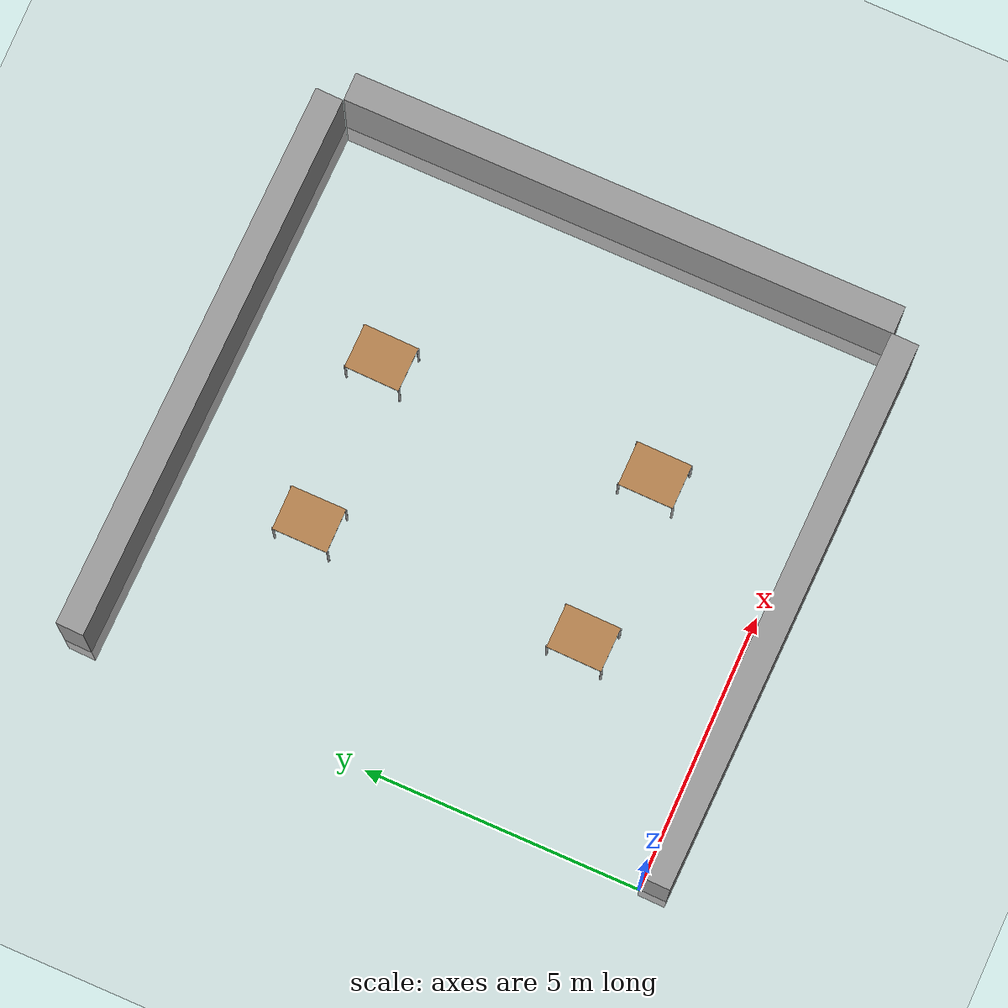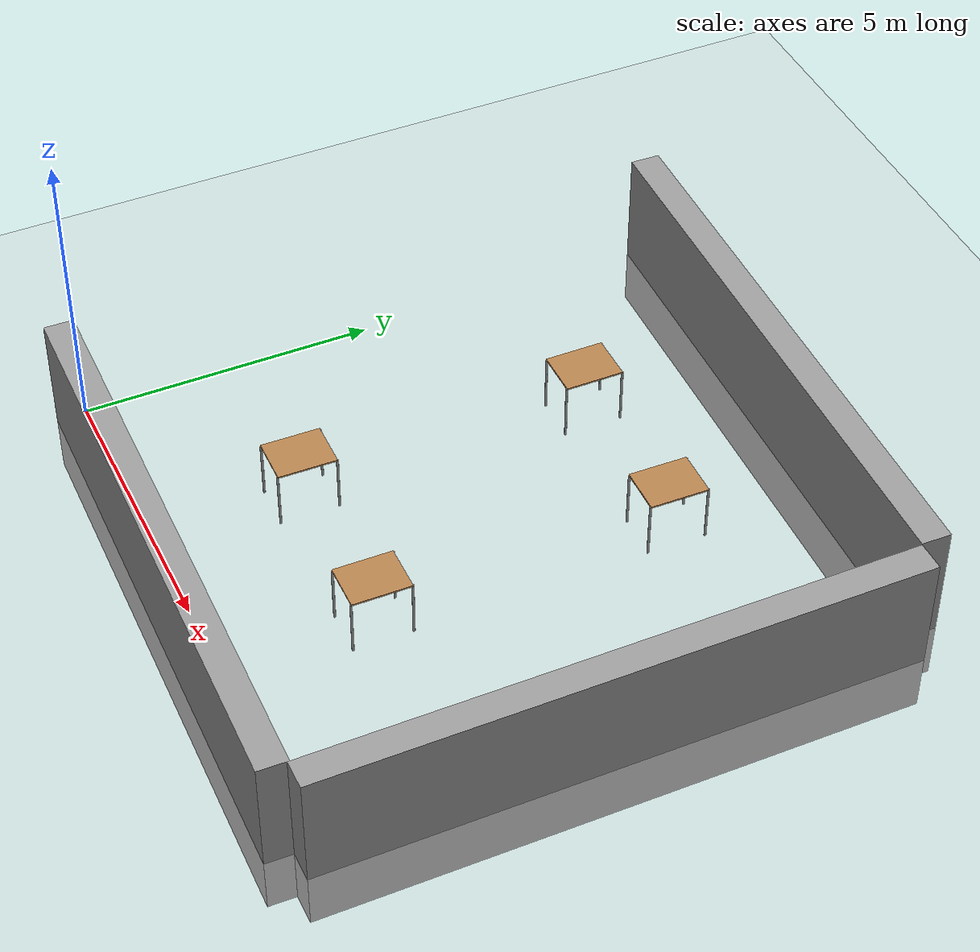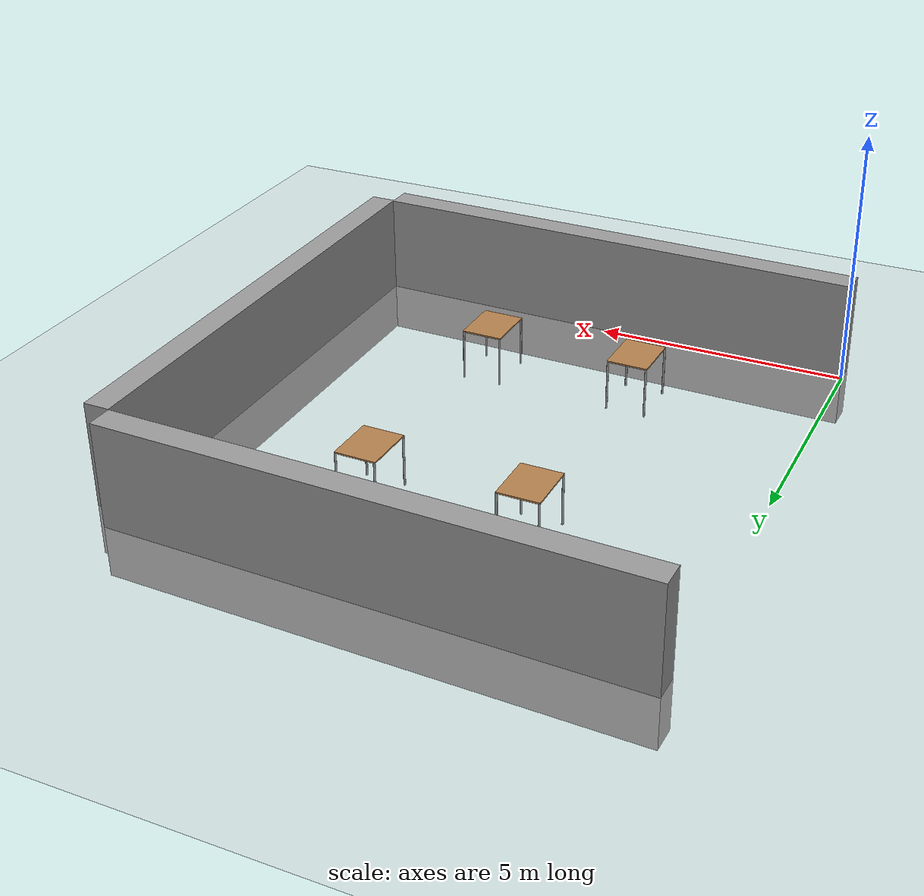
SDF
<sdf version="1.7">
 <world name="default">
  <light name="sun" type="directional">
   <pose>0 0 10 0 -0 0</pose>
   <diffuse>0.8 0.8 0.8 1</diffuse>
   <specular>0.2 0.2 0.2 1</specular>
   <attenuation>
    <range>1000</range>
    <constant>0.9</constant>
    <linear>0.01</linear>
    <quadratic>0.001</quadratic>
   </attenuation>
   <direction>-0.5 0.1 -0.9</direction>
   <spot><inner_angle>0</inner_angle><outer_angle>0</outer_angle><falloff>0</falloff></spot>
  </light>
  <model name="ground_plane">
   <static>1</static>
   <link name="link">
    <collision name="collision">
     <geometry><plane><normal>0 0 1</normal><size>100 100</size></plane></geometry>
     <surface>
      <contact><collide_bitmask>65535</collide_bitmask></contact>
      <friction><ode><mu>100</mu><mu2>50</mu2></ode></friction>
     </surface>
    </collision>
    <visual name="visual">
     <cast_shadows>0</cast_shadows>
     <geometry><plane><normal>0 0 1</normal><size>100 100</size></plane></geometry>
     <material>
      <script><uri>file://media/materials/scripts/gazebo.material</uri><name>Gazebo/Grey</name></script>
     </material>
    </visual>
   </link>
  </model>
  <gravity>0 0 -9.8</gravity>
  <magnetic_field>6e-06 2.3e-05 -4.2e-05</magnetic_field>
  <atmosphere type="adiabatic"/>
  <physics type="ode">
   <max_step_size>0.001</max_step_size>
   <real_time_factor>1</real_time_factor>
   <real_time_update_rate>1000</real_time_update_rate>
  </physics>
  <scene><ambient>0.4 0.4 0.4 1</ambient><background>0.7 0.7 0.7 1</background><shadows>1</shadows></scene>
  <spherical_coordinates>
   <surface_model>EARTH_WGS84</surface_model>
   <latitude_deg>0</latitude_deg>
   <longitude_deg>0</longitude_deg>
   <elevation>0</elevation>
   <heading_deg>0</heading_deg>
  </spherical_coordinates>
  <model name="table_project5">
   <link name="link">
    <inertial>
     <mass>1</mass>
     <inertia><ixx>1</ixx><ixy>0</ixy><ixz>0</ixz><iyy>1</iyy><iyz>0</iyz><izz>1</izz></inertia>
    </inertial>
    <visual name="visual1">
     <pose>0 0 1 0 -0 0</pose>
     <geometry><box><size>1 0.8 0.03</size></box></geometry>
     <material>
      <script><uri>file://media/materials/scripts/gazebo.material</uri><name>Gazebo/Wood</name></script>
      <shader type="pixel"><normal_map>__default__</normal_map></shader>
      <ambient>1 1 1 1</ambient>
      <diffuse>1 1 1 1</diffuse>
      <specular>0.2 0.2 0.2 1</specular>
      <emissive>0 0 0 1</emissive>
     </material>
    </visual>
    <visual name="front_left_leg">
     <pose>0.5 0.38 0.5 0 -0 0</pose>
     <geometry><cylinder><radius>0.02</radius><length>1</length></cylinder></geometry>
     <material>
      <script><uri>file://media/materials/scripts/gazebo.material</uri><name>Gazebo/Grey</name></script>
      <shader type="pixel"><normal_map>__default__</normal_map></shader>
      <ambient>0.3 0.3 0.3 1</ambient>
      <diffuse>0.7 0.7 0.7 1</diffuse>
      <specular>0.01 0.01 0.01 1</specular>
      <emissive>0 0 0 1</emissive>
     </material>
    </visual>
    <visual name="front_right_leg">
     <pose>0.5 -0.38 0.5 0 -0 0</pose>
     <geometry><cylinder><radius>0.02</radius><length>1</length></cylinder></geometry>
     <material>
      <script><uri>file://media/materials/scripts/gazebo.material</uri><name>Gazebo/Grey</name></script>
      <shader type="pixel"><normal_map>__default__</normal_map></shader>
      <ambient>0.3 0.3 0.3 1</ambient>
      <diffuse>0.7 0.7 0.7 1</diffuse>
      <specular>0.01 0.01 0.01 1</specular>
      <emissive>0 0 0 1</emissive>
     </material>
    </visual>
    <visual name="back_right_leg">
     <pose>-0.5 -0.38 0.5 0 -0 0</pose>
     <geometry><cylinder><radius>0.02</radius><length>1</length></cylinder></geometry>
     <material>
      <script><uri>file://media/materials/scripts/gazebo.material</uri><name>Gazebo/Grey</name></script>
      <shader type="pixel"><normal_map>__default__</normal_map></shader>
      <ambient>0.3 0.3 0.3 1</ambient>
      <diffuse>0.7 0.7 0.7 1</diffuse>
      <specular>0.01 0.01 0.01 1</specular>
      <emissive>0 0 0 1</emissive>
     </material>
    </visual>
    <visual name="back_left_leg">
     <pose>-0.5 0.38 0.5 0 -0 0</pose>
     <geometry><cylinder><radius>0.02</radius><length>1</length></cylinder></geometry>
     <material>
      <script><uri>file://media/materials/scripts/gazebo.material</uri><name>Gazebo/Grey</name></script>
      <shader type="pixel"><normal_map>__default__</normal_map></shader>
      <ambient>0.3 0.3 0.3 1</ambient>
      <diffuse>0.7 0.7 0.7 1</diffuse>
      <specular>0.01 0.01 0.01 1</specular>
      <emissive>0 0 0 1</emissive>
     </material>
    </visual>
    <collision name="front_right_leg">
     <pose>0.68 -0.38 0.5 0 -0 0</pose>
     <geometry><cylinder><radius>0.02</radius><length>1</length></cylinder></geometry>
     <surface>
      <friction>
       <ode><mu>1</mu><mu2>1</mu2><fdir1>0 0 0</fdir1><slip1>0</slip1><slip2>0</slip2></ode>
       <torsional>
        <coefficient>1</coefficient>
        <patch_radius>0</patch_radius>
        <surface_radius>0</surface_radius>
        <use_patch_radius>1</use_patch_radius>
        <ode><slip>0</slip></ode>
       </torsional>
      </friction>
      <bounce><restitution_coefficient>0</restitution_coefficient><threshold>1e+06</threshold></bounce>
      <contact>
       <collide_without_contact>0</collide_without_contact>
       <collide_without_contact_bitmask>1</collide_without_contact_bitmask>
       <collide_bitmask>1</collide_bitmask>
       <ode>
        <soft_cfm>0</soft_cfm>
        <soft_erp>0.2</soft_erp>
        <kp>1e+13</kp>
        <kd>1</kd>
        <max_vel>0.01</max_vel>
        <min_depth>0</min_depth>
       </ode>
       <bullet>
        <split_impulse>1</split_impulse>
        <split_impulse_penetration_threshold>-0.01</split_impulse_penetration_threshold>
        <soft_cfm>0</soft_cfm>
        <soft_erp>0.2</soft_erp>
        <kp>1e+13</kp>
        <kd>1</kd>
       </bullet>
      </contact>
     </surface>
    </collision>
    <collision name="surface">
     <pose>0 0 1 0 -0 0</pose>
     <geometry><box><size>1 0.8 0.03</size></box></geometry>
     <surface>
      <friction>
       <ode><mu>0.6</mu><mu2>0.6</mu2><fdir1>0 0 0</fdir1><slip1>0</slip1><slip2>0</slip2></ode>
       <torsional>
        <coefficient>1</coefficient>
        <patch_radius>0</patch_radius>
        <surface_radius>0</surface_radius>
        <use_patch_radius>1</use_patch_radius>
        <ode><slip>0</slip></ode>
       </torsional>
      </friction>
      <bounce><restitution_coefficient>0</restitution_coefficient><threshold>1e+06</threshold></bounce>
      <contact>
       <collide_without_contact>0</collide_without_contact>
       <collide_without_contact_bitmask>1</collide_without_contact_bitmask>
       <collide_bitmask>1</collide_bitmask>
       <ode>
        <soft_cfm>0</soft_cfm>
        <soft_erp>0.2</soft_erp>
        <kp>1e+13</kp>
        <kd>1</kd>
        <max_vel>0.01</max_vel>
        <min_depth>0</min_depth>
       </ode>
       <bullet>
        <split_impulse>1</split_impulse>
        <split_impulse_penetration_threshold>-0.01</split_impulse_penetration_threshold>
        <soft_cfm>0</soft_cfm>
        <soft_erp>0.2</soft_erp>
        <kp>1e+13</kp>
        <kd>1</kd>
       </bullet>
      </contact>
     </surface>
    </collision>
    <collision name="front_left_leg">
     <pose>0.68 0.38 0.5 0 -0 0</pose>
     <geometry><cylinder><radius>0.02</radius><length>1</length></cylinder></geometry>
     <surface>
      <friction>
       <ode><mu>1</mu><mu2>1</mu2><fdir1>0 0 0</fdir1><slip1>0</slip1><slip2>0</slip2></ode>
       <torsional>
        <coefficient>1</coefficient>
        <patch_radius>0</patch_radius>
        <surface_radius>0</surface_radius>
        <use_patch_radius>1</use_patch_radius>
        <ode><slip>0</slip></ode>
       </torsional>
      </friction>
      <bounce><restitution_coefficient>0</restitution_coefficient><threshold>1e+06</threshold></bounce>
      <contact>
       <collide_without_contact>0</collide_without_contact>
       <collide_without_contact_bitmask>1</collide_without_contact_bitmask>
       <collide_bitmask>1</collide_bitmask>
       <ode>
        <soft_cfm>0</soft_cfm>
        <soft_erp>0.2</soft_erp>
        <kp>1e+13</kp>
        <kd>1</kd>
        <max_vel>0.01</max_vel>
        <min_depth>0</min_depth>
       </ode>
       <bullet>
        <split_impulse>1</split_impulse>
        <split_impulse_penetration_threshold>-0.01</split_impulse_penetration_threshold>
        <soft_cfm>0</soft_cfm>
        <soft_erp>0.2</soft_erp>
        <kp>1e+13</kp>
        <kd>1</kd>
       </bullet>
      </contact>
     </surface>
    </collision>
    <collision name="back_right_leg">
     <pose>-0.68 -0.38 0.5 0 -0 0</pose>
     <geometry><cylinder><radius>0.02</radius><length>1</length></cylinder></geometry>
     <surface>
      <friction>
       <ode><mu>1</mu><mu2>1</mu2><fdir1>0 0 0</fdir1><slip1>0</slip1><slip2>0</slip2></ode>
       <torsional>
        <coefficient>1</coefficient>
        <patch_radius>0</patch_radius>
        <surface_radius>0</surface_radius>
        <use_patch_radius>1</use_patch_radius>
        <ode><slip>0</slip></ode>
       </torsional>
      </friction>
      <bounce><restitution_coefficient>0</restitution_coefficient><threshold>1e+06</threshold></bounce>
      <contact>
       <collide_without_contact>0</collide_without_contact>
       <collide_without_contact_bitmask>1</collide_without_contact_bitmask>
       <collide_bitmask>1</collide_bitmask>
       <ode>
        <soft_cfm>0</soft_cfm>
        <soft_erp>0.2</soft_erp>
        <kp>1e+13</kp>
        <kd>1</kd>
        <max_vel>0.01</max_vel>
        <min_depth>0</min_depth>
       </ode>
       <bullet>
        <split_impulse>1</split_impulse>
        <split_impulse_penetration_threshold>-0.01</split_impulse_penetration_threshold>
        <soft_cfm>0</soft_cfm>
        <soft_erp>0.2</soft_erp>
        <kp>1e+13</kp>
        <kd>1</kd>
       </bullet>
      </contact>
     </surface>
    </collision>
    <collision name="back_left_leg">
     <pose>-0.68 0.38 0.5 0 -0 0</pose>
     <geometry><cylinder><radius>0.02</radius><length>1</length></cylinder></geometry>
     <surface>
      <friction>
       <ode><mu>1</mu><mu2>1</mu2><fdir1>0 0 0</fdir1><slip1>0</slip1><slip2>0</slip2></ode>
       <torsional>
        <coefficient>1</coefficient>
        <patch_radius>0</patch_radius>
        <surface_radius>0</surface_radius>
        <use_patch_radius>1</use_patch_radius>
        <ode><slip>0</slip></ode>
       </torsional>
      </friction>
      <bounce><restitution_coefficient>0</restitution_coefficient><threshold>1e+06</threshold></bounce>
      <contact>
       <collide_without_contact>0</collide_without_contact>
       <collide_without_contact_bitmask>1</collide_without_contact_bitmask>
       <collide_bitmask>1</collide_bitmask>
       <ode>
        <soft_cfm>0</soft_cfm>
        <soft_erp>0.2</soft_erp>
        <kp>1e+13</kp>
        <kd>1</kd>
        <max_vel>0.01</max_vel>
        <min_depth>0</min_depth>
       </ode>
       <bullet>
        <split_impulse>1</split_impulse>
        <split_impulse_penetration_threshold>-0.01</split_impulse_penetration_threshold>
        <soft_cfm>0</soft_cfm>
        <soft_erp>0.2</soft_erp>
        <kp>1e+13</kp>
        <kd>1</kd>
       </bullet>
      </contact>
     </surface>
    </collision>
   </link>
   <static>1</static>
   <pose>3.4 2.5 0 0 0 -1.58831</pose>
  </model>
  <model name="table_project5_0">
   <link name="link">
    <inertial>
     <mass>1</mass>
     <inertia><ixx>1</ixx><ixy>0</ixy><ixz>0</ixz><iyy>1</iyy><iyz>0</iyz><izz>1</izz></inertia>
    </inertial>
    <visual name="visual1">
     <pose>0 0 1 0 -0 0</pose>
     <geometry><box><size>1 0.8 0.03</size></box></geometry>
     <material>
      <script><uri>file://media/materials/scripts/gazebo.material</uri><name>Gazebo/Wood</name></script>
      <shader type="pixel"><normal_map>__default__</normal_map></shader>
      <ambient>1 1 1 1</ambient>
      <diffuse>1 1 1 1</diffuse>
      <specular>0.2 0.2 0.2 1</specular>
      <emissive>0 0 0 1</emissive>
     </material>
    </visual>
    <visual name="front_left_leg">
     <pose>0.5 0.38 0.5 0 -0 0</pose>
     <geometry><cylinder><radius>0.02</radius><length>1</length></cylinder></geometry>
     <material>
      <script><uri>file://media/materials/scripts/gazebo.material</uri><name>Gazebo/Grey</name></script>
      <shader type="pixel"><normal_map>__default__</normal_map></shader>
      <ambient>0.3 0.3 0.3 1</ambient>
      <diffuse>0.7 0.7 0.7 1</diffuse>
      <specular>0.01 0.01 0.01 1</specular>
      <emissive>0 0 0 1</emissive>
     </material>
    </visual>
    <visual name="front_right_leg">
     <pose>0.5 -0.38 0.5 0 -0 0</pose>
     <geometry><cylinder><radius>0.02</radius><length>1</length></cylinder></geometry>
     <material>
      <script><uri>file://media/materials/scripts/gazebo.material</uri><name>Gazebo/Grey</name></script>
      <shader type="pixel"><normal_map>__default__</normal_map></shader>
      <ambient>0.3 0.3 0.3 1</ambient>
      <diffuse>0.7 0.7 0.7 1</diffuse>
      <specular>0.01 0.01 0.01 1</specular>
      <emissive>0 0 0 1</emissive>
     </material>
    </visual>
    <visual name="back_right_leg">
     <pose>-0.5 -0.38 0.5 0 -0 0</pose>
     <geometry><cylinder><radius>0.02</radius><length>1</length></cylinder></geometry>
     <material>
      <script><uri>file://media/materials/scripts/gazebo.material</uri><name>Gazebo/Grey</name></script>
      <shader type="pixel"><normal_map>__default__</normal_map></shader>
      <ambient>0.3 0.3 0.3 1</ambient>
      <diffuse>0.7 0.7 0.7 1</diffuse>
      <specular>0.01 0.01 0.01 1</specular>
      <emissive>0 0 0 1</emissive>
     </material>
    </visual>
    <visual name="back_left_leg">
     <pose>-0.5 0.38 0.5 0 -0 0</pose>
     <geometry><cylinder><radius>0.02</radius><length>1</length></cylinder></geometry>
     <material>
      <script><uri>file://media/materials/scripts/gazebo.material</uri><name>Gazebo/Grey</name></script>
      <shader type="pixel"><normal_map>__default__</normal_map></shader>
      <ambient>0.3 0.3 0.3 1</ambient>
      <diffuse>0.7 0.7 0.7 1</diffuse>
      <specular>0.01 0.01 0.01 1</specular>
      <emissive>0 0 0 1</emissive>
     </material>
    </visual>
    <collision name="front_right_leg">
     <pose>0.68 -0.38 0.5 0 -0 0</pose>
     <geometry><cylinder><radius>0.02</radius><length>1</length></cylinder></geometry>
     <surface>
      <friction>
       <ode><mu>1</mu><mu2>1</mu2><fdir1>0 0 0</fdir1><slip1>0</slip1><slip2>0</slip2></ode>
       <torsional>
        <coefficient>1</coefficient>
        <patch_radius>0</patch_radius>
        <surface_radius>0</surface_radius>
        <use_patch_radius>1</use_patch_radius>
        <ode><slip>0</slip></ode>
       </torsional>
      </friction>
      <bounce><restitution_coefficient>0</restitution_coefficient><threshold>1e+06</threshold></bounce>
      <contact>
       <collide_without_contact>0</collide_without_contact>
       <collide_without_contact_bitmask>1</collide_without_contact_bitmask>
       <collide_bitmask>1</collide_bitmask>
       <ode>
        <soft_cfm>0</soft_cfm>
        <soft_erp>0.2</soft_erp>
        <kp>1e+13</kp>
        <kd>1</kd>
        <max_vel>0.01</max_vel>
        <min_depth>0</min_depth>
       </ode>
       <bullet>
        <split_impulse>1</split_impulse>
        <split_impulse_penetration_threshold>-0.01</split_impulse_penetration_threshold>
        <soft_cfm>0</soft_cfm>
        <soft_erp>0.2</soft_erp>
        <kp>1e+13</kp>
        <kd>1</kd>
       </bullet>
      </contact>
     </surface>
    </collision>
    <collision name="surface">
     <pose>0 0 1 0 -0 0</pose>
     <geometry><box><size>1 0.8 0.03</size></box></geometry>
     <surface>
      <friction>
       <ode><mu>0.6</mu><mu2>0.6</mu2><fdir1>0 0 0</fdir1><slip1>0</slip1><slip2>0</slip2></ode>
       <torsional>
        <coefficient>1</coefficient>
        <patch_radius>0</patch_radius>
        <surface_radius>0</surface_radius>
        <use_patch_radius>1</use_patch_radius>
        <ode><slip>0</slip></ode>
       </torsional>
      </friction>
      <bounce><restitution_coefficient>0</restitution_coefficient><threshold>1e+06</threshold></bounce>
      <contact>
       <collide_without_contact>0</collide_without_contact>
       <collide_without_contact_bitmask>1</collide_without_contact_bitmask>
       <collide_bitmask>1</collide_bitmask>
       <ode>
        <soft_cfm>0</soft_cfm>
        <soft_erp>0.2</soft_erp>
        <kp>1e+13</kp>
        <kd>1</kd>
        <max_vel>0.01</max_vel>
        <min_depth>0</min_depth>
       </ode>
       <bullet>
        <split_impulse>1</split_impulse>
        <split_impulse_penetration_threshold>-0.01</split_impulse_penetration_threshold>
        <soft_cfm>0</soft_cfm>
        <soft_erp>0.2</soft_erp>
        <kp>1e+13</kp>
        <kd>1</kd>
       </bullet>
      </contact>
     </surface>
    </collision>
    <collision name="front_left_leg">
     <pose>0.68 0.38 0.5 0 -0 0</pose>
     <geometry><cylinder><radius>0.02</radius><length>1</length></cylinder></geometry>
     <surface>
      <friction>
       <ode><mu>1</mu><mu2>1</mu2><fdir1>0 0 0</fdir1><slip1>0</slip1><slip2>0</slip2></ode>
       <torsional>
        <coefficient>1</coefficient>
        <patch_radius>0</patch_radius>
        <surface_radius>0</surface_radius>
        <use_patch_radius>1</use_patch_radius>
        <ode><slip>0</slip></ode>
       </torsional>
      </friction>
      <bounce><restitution_coefficient>0</restitution_coefficient><threshold>1e+06</threshold></bounce>
      <contact>
       <collide_without_contact>0</collide_without_contact>
       <collide_without_contact_bitmask>1</collide_without_contact_bitmask>
       <collide_bitmask>1</collide_bitmask>
       <ode>
        <soft_cfm>0</soft_cfm>
        <soft_erp>0.2</soft_erp>
        <kp>1e+13</kp>
        <kd>1</kd>
        <max_vel>0.01</max_vel>
        <min_depth>0</min_depth>
       </ode>
       <bullet>
        <split_impulse>1</split_impulse>
        <split_impulse_penetration_threshold>-0.01</split_impulse_penetration_threshold>
        <soft_cfm>0</soft_cfm>
        <soft_erp>0.2</soft_erp>
        <kp>1e+13</kp>
        <kd>1</kd>
       </bullet>
      </contact>
     </surface>
    </collision>
    <collision name="back_right_leg">
     <pose>-0.68 -0.38 0.5 0 -0 0</pose>
     <geometry><cylinder><radius>0.02</radius><length>1</length></cylinder></geometry>
     <surface>
      <friction>
       <ode><mu>1</mu><mu2>1</mu2><fdir1>0 0 0</fdir1><slip1>0</slip1><slip2>0</slip2></ode>
       <torsional>
        <coefficient>1</coefficient>
        <patch_radius>0</patch_radius>
        <surface_radius>0</surface_radius>
        <use_patch_radius>1</use_patch_radius>
        <ode><slip>0</slip></ode>
       </torsional>
      </friction>
      <bounce><restitution_coefficient>0</restitution_coefficient><threshold>1e+06</threshold></bounce>
      <contact>
       <collide_without_contact>0</collide_without_contact>
       <collide_without_contact_bitmask>1</collide_without_contact_bitmask>
       <collide_bitmask>1</collide_bitmask>
       <ode>
        <soft_cfm>0</soft_cfm>
        <soft_erp>0.2</soft_erp>
        <kp>1e+13</kp>
        <kd>1</kd>
        <max_vel>0.01</max_vel>
        <min_depth>0</min_depth>
       </ode>
       <bullet>
        <split_impulse>1</split_impulse>
        <split_impulse_penetration_threshold>-0.01</split_impulse_penetration_threshold>
        <soft_cfm>0</soft_cfm>
        <soft_erp>0.2</soft_erp>
        <kp>1e+13</kp>
        <kd>1</kd>
       </bullet>
      </contact>
     </surface>
    </collision>
    <collision name="back_left_leg">
     <pose>-0.68 0.38 0.5 0 -0 0</pose>
     <geometry><cylinder><radius>0.02</radius><length>1</length></cylinder></geometry>
     <surface>
      <friction>
       <ode><mu>1</mu><mu2>1</mu2><fdir1>0 0 0</fdir1><slip1>0</slip1><slip2>0</slip2></ode>
       <torsional>
        <coefficient>1</coefficient>
        <patch_radius>0</patch_radius>
        <surface_radius>0</surface_radius>
        <use_patch_radius>1</use_patch_radius>
        <ode><slip>0</slip></ode>
       </torsional>
      </friction>
      <bounce><restitution_coefficient>0</restitution_coefficient><threshold>1e+06</threshold></bounce>
      <contact>
       <collide_without_contact>0</collide_without_contact>
       <collide_without_contact_bitmask>1</collide_without_contact_bitmask>
       <collide_bitmask>1</collide_bitmask>
       <ode>
        <soft_cfm>0</soft_cfm>
        <soft_erp>0.2</soft_erp>
        <kp>1e+13</kp>
        <kd>1</kd>
        <max_vel>0.01</max_vel>
        <min_depth>0</min_depth>
       </ode>
       <bullet>
        <split_impulse>1</split_impulse>
        <split_impulse_penetration_threshold>-0.01</split_impulse_penetration_threshold>
        <soft_cfm>0</soft_cfm>
        <soft_erp>0.2</soft_erp>
        <kp>1e+13</kp>
        <kd>1</kd>
       </bullet>
      </contact>
     </surface>
    </collision>
   </link>
   <static>1</static>
   <pose>3.4 7.5 0 0 0 -1.57503</pose>
  </model>
  <model name="table_project5_1">
   <link name="link">
    <inertial>
     <mass>1</mass>
     <inertia><ixx>1</ixx><ixy>0</ixy><ixz>0</ixz><iyy>1</iyy><iyz>0</iyz><izz>1</izz></inertia>
    </inertial>
    <visual name="visual1">
     <pose>0 0 1 0 -0 0</pose>
     <geometry><box><size>1 0.8 0.03</size></box></geometry>
     <material>
      <script><uri>file://media/materials/scripts/gazebo.material</uri><name>Gazebo/Wood</name></script>
      <shader type="pixel"><normal_map>__default__</normal_map></shader>
      <ambient>1 1 1 1</ambient>
      <diffuse>1 1 1 1</diffuse>
      <specular>0.2 0.2 0.2 1</specular>
      <emissive>0 0 0 1</emissive>
     </material>
    </visual>
    <visual name="front_left_leg">
     <pose>0.5 0.38 0.5 0 -0 0</pose>
     <geometry><cylinder><radius>0.02</radius><length>1</length></cylinder></geometry>
     <material>
      <script><uri>file://media/materials/scripts/gazebo.material</uri><name>Gazebo/Grey</name></script>
      <shader type="pixel"><normal_map>__default__</normal_map></shader>
      <ambient>0.3 0.3 0.3 1</ambient>
      <diffuse>0.7 0.7 0.7 1</diffuse>
      <specular>0.01 0.01 0.01 1</specular>
      <emissive>0 0 0 1</emissive>
     </material>
    </visual>
    <visual name="front_right_leg">
     <pose>0.5 -0.38 0.5 0 -0 0</pose>
     <geometry><cylinder><radius>0.02</radius><length>1</length></cylinder></geometry>
     <material>
      <script><uri>file://media/materials/scripts/gazebo.material</uri><name>Gazebo/Grey</name></script>
      <shader type="pixel"><normal_map>__default__</normal_map></shader>
      <ambient>0.3 0.3 0.3 1</ambient>
      <diffuse>0.7 0.7 0.7 1</diffuse>
      <specular>0.01 0.01 0.01 1</specular>
      <emissive>0 0 0 1</emissive>
     </material>
    </visual>
    <visual name="back_right_leg">
     <pose>-0.5 -0.38 0.5 0 -0 0</pose>
     <geometry><cylinder><radius>0.02</radius><length>1</length></cylinder></geometry>
     <material>
      <script><uri>file://media/materials/scripts/gazebo.material</uri><name>Gazebo/Grey</name></script>
      <shader type="pixel"><normal_map>__default__</normal_map></shader>
      <ambient>0.3 0.3 0.3 1</ambient>
      <diffuse>0.7 0.7 0.7 1</diffuse>
      <specular>0.01 0.01 0.01 1</specular>
      <emissive>0 0 0 1</emissive>
     </material>
    </visual>
    <visual name="back_left_leg">
     <pose>-0.5 0.38 0.5 0 -0 0</pose>
     <geometry><cylinder><radius>0.02</radius><length>1</length></cylinder></geometry>
     <material>
      <script><uri>file://media/materials/scripts/gazebo.material</uri><name>Gazebo/Grey</name></script>
      <shader type="pixel"><normal_map>__default__</normal_map></shader>
      <ambient>0.3 0.3 0.3 1</ambient>
      <diffuse>0.7 0.7 0.7 1</diffuse>
      <specular>0.01 0.01 0.01 1</specular>
      <emissive>0 0 0 1</emissive>
     </material>
    </visual>
    <collision name="front_right_leg">
     <pose>0.68 -0.38 0.5 0 -0 0</pose>
     <geometry><cylinder><radius>0.02</radius><length>1</length></cylinder></geometry>
     <surface>
      <friction>
       <ode><mu>1</mu><mu2>1</mu2><fdir1>0 0 0</fdir1><slip1>0</slip1><slip2>0</slip2></ode>
       <torsional>
        <coefficient>1</coefficient>
        <patch_radius>0</patch_radius>
        <surface_radius>0</surface_radius>
        <use_patch_radius>1</use_patch_radius>
        <ode><slip>0</slip></ode>
       </torsional>
      </friction>
      <bounce><restitution_coefficient>0</restitution_coefficient><threshold>1e+06</threshold></bounce>
      <contact>
       <collide_without_contact>0</collide_without_contact>
       <collide_without_contact_bitmask>1</collide_without_contact_bitmask>
       <collide_bitmask>1</collide_bitmask>
       <ode>
        <soft_cfm>0</soft_cfm>
        <soft_erp>0.2</soft_erp>
        <kp>1e+13</kp>
        <kd>1</kd>
        <max_vel>0.01</max_vel>
        <min_depth>0</min_depth>
       </ode>
       <bullet>
        <split_impulse>1</split_impulse>
        <split_impulse_penetration_threshold>-0.01</split_impulse_penetration_threshold>
        <soft_cfm>0</soft_cfm>
        <soft_erp>0.2</soft_erp>
        <kp>1e+13</kp>
        <kd>1</kd>
       </bullet>
      </contact>
     </surface>
    </collision>
    <collision name="surface">
     <pose>0 0 1 0 -0 0</pose>
     <geometry><box><size>1 0.8 0.03</size></box></geometry>
     <surface>
      <friction>
       <ode><mu>0.6</mu><mu2>0.6</mu2><fdir1>0 0 0</fdir1><slip1>0</slip1><slip2>0</slip2></ode>
       <torsional>
        <coefficient>1</coefficient>
        <patch_radius>0</patch_radius>
        <surface_radius>0</surface_radius>
        <use_patch_radius>1</use_patch_radius>
        <ode><slip>0</slip></ode>
       </torsional>
      </friction>
      <bounce><restitution_coefficient>0</restitution_coefficient><threshold>1e+06</threshold></bounce>
      <contact>
       <collide_without_contact>0</collide_without_contact>
       <collide_without_contact_bitmask>1</collide_without_contact_bitmask>
       <collide_bitmask>1</collide_bitmask>
       <ode>
        <soft_cfm>0</soft_cfm>
        <soft_erp>0.2</soft_erp>
        <kp>1e+13</kp>
        <kd>1</kd>
        <max_vel>0.01</max_vel>
        <min_depth>0</min_depth>
       </ode>
       <bullet>
        <split_impulse>1</split_impulse>
        <split_impulse_penetration_threshold>-0.01</split_impulse_penetration_threshold>
        <soft_cfm>0</soft_cfm>
        <soft_erp>0.2</soft_erp>
        <kp>1e+13</kp>
        <kd>1</kd>
       </bullet>
      </contact>
     </surface>
    </collision>
    <collision name="front_left_leg">
     <pose>0.68 0.38 0.5 0 -0 0</pose>
     <geometry><cylinder><radius>0.02</radius><length>1</length></cylinder></geometry>
     <surface>
      <friction>
       <ode><mu>1</mu><mu2>1</mu2><fdir1>0 0 0</fdir1><slip1>0</slip1><slip2>0</slip2></ode>
       <torsional>
        <coefficient>1</coefficient>
        <patch_radius>0</patch_radius>
        <surface_radius>0</surface_radius>
        <use_patch_radius>1</use_patch_radius>
        <ode><slip>0</slip></ode>
       </torsional>
      </friction>
      <bounce><restitution_coefficient>0</restitution_coefficient><threshold>1e+06</threshold></bounce>
      <contact>
       <collide_without_contact>0</collide_without_contact>
       <collide_without_contact_bitmask>1</collide_without_contact_bitmask>
       <collide_bitmask>1</collide_bitmask>
       <ode>
        <soft_cfm>0</soft_cfm>
        <soft_erp>0.2</soft_erp>
        <kp>1e+13</kp>
        <kd>1</kd>
        <max_vel>0.01</max_vel>
        <min_depth>0</min_depth>
       </ode>
       <bullet>
        <split_impulse>1</split_impulse>
        <split_impulse_penetration_threshold>-0.01</split_impulse_penetration_threshold>
        <soft_cfm>0</soft_cfm>
        <soft_erp>0.2</soft_erp>
        <kp>1e+13</kp>
        <kd>1</kd>
       </bullet>
      </contact>
     </surface>
    </collision>
    <collision name="back_right_leg">
     <pose>-0.68 -0.38 0.5 0 -0 0</pose>
     <geometry><cylinder><radius>0.02</radius><length>1</length></cylinder></geometry>
     <surface>
      <friction>
       <ode><mu>1</mu><mu2>1</mu2><fdir1>0 0 0</fdir1><slip1>0</slip1><slip2>0</slip2></ode>
       <torsional>
        <coefficient>1</coefficient>
        <patch_radius>0</patch_radius>
        <surface_radius>0</surface_radius>
        <use_patch_radius>1</use_patch_radius>
        <ode><slip>0</slip></ode>
       </torsional>
      </friction>
      <bounce><restitution_coefficient>0</restitution_coefficient><threshold>1e+06</threshold></bounce>
      <contact>
       <collide_without_contact>0</collide_without_contact>
       <collide_without_contact_bitmask>1</collide_without_contact_bitmask>
       <collide_bitmask>1</collide_bitmask>
       <ode>
        <soft_cfm>0</soft_cfm>
        <soft_erp>0.2</soft_erp>
        <kp>1e+13</kp>
        <kd>1</kd>
        <max_vel>0.01</max_vel>
        <min_depth>0</min_depth>
       </ode>
       <bullet>
        <split_impulse>1</split_impulse>
        <split_impulse_penetration_threshold>-0.01</split_impulse_penetration_threshold>
        <soft_cfm>0</soft_cfm>
        <soft_erp>0.2</soft_erp>
        <kp>1e+13</kp>
        <kd>1</kd>
       </bullet>
      </contact>
     </surface>
    </collision>
    <collision name="back_left_leg">
     <pose>-0.68 0.38 0.5 0 -0 0</pose>
     <geometry><cylinder><radius>0.02</radius><length>1</length></cylinder></geometry>
     <surface>
      <friction>
       <ode><mu>1</mu><mu2>1</mu2><fdir1>0 0 0</fdir1><slip1>0</slip1><slip2>0</slip2></ode>
       <torsional>
        <coefficient>1</coefficient>
        <patch_radius>0</patch_radius>
        <surface_radius>0</surface_radius>
        <use_patch_radius>1</use_patch_radius>
        <ode><slip>0</slip></ode>
       </torsional>
      </friction>
      <bounce><restitution_coefficient>0</restitution_coefficient><threshold>1e+06</threshold></bounce>
      <contact>
       <collide_without_contact>0</collide_without_contact>
       <collide_without_contact_bitmask>1</collide_without_contact_bitmask>
       <collide_bitmask>1</collide_bitmask>
       <ode>
        <soft_cfm>0</soft_cfm>
        <soft_erp>0.2</soft_erp>
        <kp>1e+13</kp>
        <kd>1</kd>
        <max_vel>0.01</max_vel>
        <min_depth>0</min_depth>
       </ode>
       <bullet>
        <split_impulse>1</split_impulse>
        <split_impulse_penetration_threshold>-0.01</split_impulse_penetration_threshold>
        <soft_cfm>0</soft_cfm>
        <soft_erp>0.2</soft_erp>
        <kp>1e+13</kp>
        <kd>1</kd>
       </bullet>
      </contact>
     </surface>
    </collision>
   </link>
   <static>1</static>
   <pose>6.4 2.49643 0 0 0 -1.58251</pose>
  </model>
  <model name="table_project5_2">
   <link name="link">
    <inertial>
     <mass>1</mass>
     <inertia><ixx>1</ixx><ixy>0</ixy><ixz>0</ixz><iyy>1</iyy><iyz>0</iyz><izz>1</izz></inertia>
    </inertial>
    <visual name="visual1">
     <pose>0 0 1 0 -0 0</pose>
     <geometry><box><size>1 0.8 0.03</size></box></geometry>
     <material>
      <script><uri>file://media/materials/scripts/gazebo.material</uri><name>Gazebo/Wood</name></script>
      <shader type="pixel"><normal_map>__default__</normal_map></shader>
      <ambient>1 1 1 1</ambient>
      <diffuse>1 1 1 1</diffuse>
      <specular>0.2 0.2 0.2 1</specular>
      <emissive>0 0 0 1</emissive>
     </material>
    </visual>
    <visual name="front_left_leg">
     <pose>0.5 0.38 0.5 0 -0 0</pose>
     <geometry><cylinder><radius>0.02</radius><length>1</length></cylinder></geometry>
     <material>
      <script><uri>file://media/materials/scripts/gazebo.material</uri><name>Gazebo/Grey</name></script>
      <shader type="pixel"><normal_map>__default__</normal_map></shader>
      <ambient>0.3 0.3 0.3 1</ambient>
      <diffuse>0.7 0.7 0.7 1</diffuse>
      <specular>0.01 0.01 0.01 1</specular>
      <emissive>0 0 0 1</emissive>
     </material>
    </visual>
    <visual name="front_right_leg">
     <pose>0.5 -0.38 0.5 0 -0 0</pose>
     <geometry><cylinder><radius>0.02</radius><length>1</length></cylinder></geometry>
     <material>
      <script><uri>file://media/materials/scripts/gazebo.material</uri><name>Gazebo/Grey</name></script>
      <shader type="pixel"><normal_map>__default__</normal_map></shader>
      <ambient>0.3 0.3 0.3 1</ambient>
      <diffuse>0.7 0.7 0.7 1</diffuse>
      <specular>0.01 0.01 0.01 1</specular>
      <emissive>0 0 0 1</emissive>
     </material>
    </visual>
    <visual name="back_right_leg">
     <pose>-0.5 -0.38 0.5 0 -0 0</pose>
     <geometry><cylinder><radius>0.02</radius><length>1</length></cylinder></geometry>
     <material>
      <script><uri>file://media/materials/scripts/gazebo.material</uri><name>Gazebo/Grey</name></script>
      <shader type="pixel"><normal_map>__default__</normal_map></shader>
      <ambient>0.3 0.3 0.3 1</ambient>
      <diffuse>0.7 0.7 0.7 1</diffuse>
      <specular>0.01 0.01 0.01 1</specular>
      <emissive>0 0 0 1</emissive>
     </material>
    </visual>
    <visual name="back_left_leg">
     <pose>-0.5 0.38 0.5 0 -0 0</pose>
     <geometry><cylinder><radius>0.02</radius><length>1</length></cylinder></geometry>
     <material>
      <script><uri>file://media/materials/scripts/gazebo.material</uri><name>Gazebo/Grey</name></script>
      <shader type="pixel"><normal_map>__default__</normal_map></shader>
      <ambient>0.3 0.3 0.3 1</ambient>
      <diffuse>0.7 0.7 0.7 1</diffuse>
      <specular>0.01 0.01 0.01 1</specular>
      <emissive>0 0 0 1</emissive>
     </material>
    </visual>
    <collision name="front_right_leg">
     <pose>0.68 -0.38 0.5 0 -0 0</pose>
     <geometry><cylinder><radius>0.02</radius><length>1</length></cylinder></geometry>
     <surface>
      <friction>
       <ode><mu>1</mu><mu2>1</mu2><fdir1>0 0 0</fdir1><slip1>0</slip1><slip2>0</slip2></ode>
       <torsional>
        <coefficient>1</coefficient>
        <patch_radius>0</patch_radius>
        <surface_radius>0</surface_radius>
        <use_patch_radius>1</use_patch_radius>
        <ode><slip>0</slip></ode>
       </torsional>
      </friction>
      <bounce><restitution_coefficient>0</restitution_coefficient><threshold>1e+06</threshold></bounce>
      <contact>
       <collide_without_contact>0</collide_without_contact>
       <collide_without_contact_bitmask>1</collide_without_contact_bitmask>
       <collide_bitmask>1</collide_bitmask>
       <ode>
        <soft_cfm>0</soft_cfm>
        <soft_erp>0.2</soft_erp>
        <kp>1e+13</kp>
        <kd>1</kd>
        <max_vel>0.01</max_vel>
        <min_depth>0</min_depth>
       </ode>
       <bullet>
        <split_impulse>1</split_impulse>
        <split_impulse_penetration_threshold>-0.01</split_impulse_penetration_threshold>
        <soft_cfm>0</soft_cfm>
        <soft_erp>0.2</soft_erp>
        <kp>1e+13</kp>
        <kd>1</kd>
       </bullet>
      </contact>
     </surface>
    </collision>
    <collision name="surface">
     <pose>0 0 1 0 -0 0</pose>
     <geometry><box><size>1 0.8 0.03</size></box></geometry>
     <surface>
      <friction>
       <ode><mu>0.6</mu><mu2>0.6</mu2><fdir1>0 0 0</fdir1><slip1>0</slip1><slip2>0</slip2></ode>
       <torsional>
        <coefficient>1</coefficient>
        <patch_radius>0</patch_radius>
        <surface_radius>0</surface_radius>
        <use_patch_radius>1</use_patch_radius>
        <ode><slip>0</slip></ode>
       </torsional>
      </friction>
      <bounce><restitution_coefficient>0</restitution_coefficient><threshold>1e+06</threshold></bounce>
      <contact>
       <collide_without_contact>0</collide_without_contact>
       <collide_without_contact_bitmask>1</collide_without_contact_bitmask>
       <collide_bitmask>1</collide_bitmask>
       <ode>
        <soft_cfm>0</soft_cfm>
        <soft_erp>0.2</soft_erp>
        <kp>1e+13</kp>
        <kd>1</kd>
        <max_vel>0.01</max_vel>
        <min_depth>0</min_depth>
       </ode>
       <bullet>
        <split_impulse>1</split_impulse>
        <split_impulse_penetration_threshold>-0.01</split_impulse_penetration_threshold>
        <soft_cfm>0</soft_cfm>
        <soft_erp>0.2</soft_erp>
        <kp>1e+13</kp>
        <kd>1</kd>
       </bullet>
      </contact>
     </surface>
    </collision>
    <collision name="front_left_leg">
     <pose>0.68 0.38 0.5 0 -0 0</pose>
     <geometry><cylinder><radius>0.02</radius><length>1</length></cylinder></geometry>
     <surface>
      <friction>
       <ode><mu>1</mu><mu2>1</mu2><fdir1>0 0 0</fdir1><slip1>0</slip1><slip2>0</slip2></ode>
       <torsional>
        <coefficient>1</coefficient>
        <patch_radius>0</patch_radius>
        <surface_radius>0</surface_radius>
        <use_patch_radius>1</use_patch_radius>
        <ode><slip>0</slip></ode>
       </torsional>
      </friction>
      <bounce><restitution_coefficient>0</restitution_coefficient><threshold>1e+06</threshold></bounce>
      <contact>
       <collide_without_contact>0</collide_without_contact>
       <collide_without_contact_bitmask>1</collide_without_contact_bitmask>
       <collide_bitmask>1</collide_bitmask>
       <ode>
        <soft_cfm>0</soft_cfm>
        <soft_erp>0.2</soft_erp>
        <kp>1e+13</kp>
        <kd>1</kd>
        <max_vel>0.01</max_vel>
        <min_depth>0</min_depth>
       </ode>
       <bullet>
        <split_impulse>1</split_impulse>
        <split_impulse_penetration_threshold>-0.01</split_impulse_penetration_threshold>
        <soft_cfm>0</soft_cfm>
        <soft_erp>0.2</soft_erp>
        <kp>1e+13</kp>
        <kd>1</kd>
       </bullet>
      </contact>
     </surface>
    </collision>
    <collision name="back_right_leg">
     <pose>-0.68 -0.38 0.5 0 -0 0</pose>
     <geometry><cylinder><radius>0.02</radius><length>1</length></cylinder></geometry>
     <surface>
      <friction>
       <ode><mu>1</mu><mu2>1</mu2><fdir1>0 0 0</fdir1><slip1>0</slip1><slip2>0</slip2></ode>
       <torsional>
        <coefficient>1</coefficient>
        <patch_radius>0</patch_radius>
        <surface_radius>0</surface_radius>
        <use_patch_radius>1</use_patch_radius>
        <ode><slip>0</slip></ode>
       </torsional>
      </friction>
      <bounce><restitution_coefficient>0</restitution_coefficient><threshold>1e+06</threshold></bounce>
      <contact>
       <collide_without_contact>0</collide_without_contact>
       <collide_without_contact_bitmask>1</collide_without_contact_bitmask>
       <collide_bitmask>1</collide_bitmask>
       <ode>
        <soft_cfm>0</soft_cfm>
        <soft_erp>0.2</soft_erp>
        <kp>1e+13</kp>
        <kd>1</kd>
        <max_vel>0.01</max_vel>
        <min_depth>0</min_depth>
       </ode>
       <bullet>
        <split_impulse>1</split_impulse>
        <split_impulse_penetration_threshold>-0.01</split_impulse_penetration_threshold>
        <soft_cfm>0</soft_cfm>
        <soft_erp>0.2</soft_erp>
        <kp>1e+13</kp>
        <kd>1</kd>
       </bullet>
      </contact>
     </surface>
    </collision>
    <collision name="back_left_leg">
     <pose>-0.68 0.38 0.5 0 -0 0</pose>
     <geometry><cylinder><radius>0.02</radius><length>1</length></cylinder></geometry>
     <surface>
      <friction>
       <ode><mu>1</mu><mu2>1</mu2><fdir1>0 0 0</fdir1><slip1>0</slip1><slip2>0</slip2></ode>
       <torsional>
        <coefficient>1</coefficient>
        <patch_radius>0</patch_radius>
        <surface_radius>0</surface_radius>
        <use_patch_radius>1</use_patch_radius>
        <ode><slip>0</slip></ode>
       </torsional>
      </friction>
      <bounce><restitution_coefficient>0</restitution_coefficient><threshold>1e+06</threshold></bounce>
      <contact>
       <collide_without_contact>0</collide_without_contact>
       <collide_without_contact_bitmask>1</collide_without_contact_bitmask>
       <collide_bitmask>1</collide_bitmask>
       <ode>
        <soft_cfm>0</soft_cfm>
        <soft_erp>0.2</soft_erp>
        <kp>1e+13</kp>
        <kd>1</kd>
        <max_vel>0.01</max_vel>
        <min_depth>0</min_depth>
       </ode>
       <bullet>
        <split_impulse>1</split_impulse>
        <split_impulse_penetration_threshold>-0.01</split_impulse_penetration_threshold>
        <soft_cfm>0</soft_cfm>
        <soft_erp>0.2</soft_erp>
        <kp>1e+13</kp>
        <kd>1</kd>
       </bullet>
      </contact>
     </surface>
    </collision>
   </link>
   <static>1</static>
   <pose>6.4 7.5 0 0 0 -1.59153</pose>
  </model>
  <model name="My_box_pj5_9">
   <link name="link">
    <inertial>
     <mass>1</mass>
     <inertia>
      <ixx>0.166667</ixx>
      <ixy>0</ixy>
      <ixz>0</ixz>
      <iyy>0.166667</iyy>
      <iyz>0</iyz>
      <izz>0.166667</izz>
     </inertia>
    </inertial>
    <visual name="visual">
     <geometry><box><size>0.5 10 3</size></box></geometry>
     <material>
      <script><name>Gazebo/Grey</name><uri>file://media/materials/scripts/gazebo.material</uri></script>
      <shader type="pixel"><normal_map>__default__</normal_map></shader>
      <ambient>0.3 0.3 0.3 1</ambient>
      <diffuse>0.7 0.7 0.7 1</diffuse>
      <specular>0.01 0.01 0.01 1</specular>
      <emissive>0 0 0 1</emissive>
     </material>
    </visual>
    <collision name="collision">
     <geometry><box><size>1 1 1</size></box></geometry>
     <surface>
      <friction>
       <ode><mu>1</mu><mu2>1</mu2><fdir1>0 0 0</fdir1><slip1>0</slip1><slip2>0</slip2></ode>
       <torsional>
        <coefficient>1</coefficient>
        <patch_radius>0</patch_radius>
        <surface_radius>0</surface_radius>
        <use_patch_radius>1</use_patch_radius>
        <ode><slip>0</slip></ode>
       </torsional>
      </friction>
      <bounce><restitution_coefficient>0</restitution_coefficient><threshold>1e+06</threshold></bounce>
      <contact>
       <collide_without_contact>0</collide_without_contact>
       <collide_without_contact_bitmask>1</collide_without_contact_bitmask>
       <collide_bitmask>1</collide_bitmask>
       <ode>
        <soft_cfm>0</soft_cfm>
        <soft_erp>0.2</soft_erp>
        <kp>1e+13</kp>
        <kd>1</kd>
        <max_vel>0.01</max_vel>
        <min_depth>0</min_depth>
       </ode>
       <bullet>
        <split_impulse>1</split_impulse>
        <split_impulse_penetration_threshold>-0.01</split_impulse_penetration_threshold>
        <soft_cfm>0</soft_cfm>
        <soft_erp>0.2</soft_erp>
        <kp>1e+13</kp>
        <kd>1</kd>
       </bullet>
      </contact>
     </surface>
    </collision>
   </link>
   <static>0</static>
   <pose>10.2576 4.7585 0.499995 -1e-05 -0 0</pose>
  </model>
  <model name="My_box_pj5_9_0">
   <link name="link">
    <inertial>
     <mass>1</mass>
     <inertia>
      <ixx>0.166667</ixx>
      <ixy>0</ixy>
      <ixz>0</ixz>
      <iyy>0.166667</iyy>
      <iyz>0</iyz>
      <izz>0.166667</izz>
     </inertia>
    </inertial>
    <visual name="visual">
     <geometry><box><size>0.5 10 3</size></box></geometry>
     <material>
      <script><name>Gazebo/Grey</name><uri>file://media/materials/scripts/gazebo.material</uri></script>
      <shader type="pixel"><normal_map>__default__</normal_map></shader>
      <ambient>0.3 0.3 0.3 1</ambient>
      <diffuse>0.7 0.7 0.7 1</diffuse>
      <specular>0.01 0.01 0.01 1</specular>
      <emissive>0 0 0 1</emissive>
     </material>
    </visual>
    <collision name="collision">
     <geometry><box><size>1 1 1</size></box></geometry>
     <surface>
      <friction>
       <ode><mu>1</mu><mu2>1</mu2><fdir1>0 0 0</fdir1><slip1>0</slip1><slip2>0</slip2></ode>
       <torsional>
        <coefficient>1</coefficient>
        <patch_radius>0</patch_radius>
        <surface_radius>0</surface_radius>
        <use_patch_radius>1</use_patch_radius>
        <ode><slip>0</slip></ode>
       </torsional>
      </friction>
      <bounce><restitution_coefficient>0</restitution_coefficient><threshold>1e+06</threshold></bounce>
      <contact>
       <collide_without_contact>0</collide_without_contact>
       <collide_without_contact_bitmask>1</collide_without_contact_bitmask>
       <collide_bitmask>1</collide_bitmask>
       <ode>
        <soft_cfm>0</soft_cfm>
        <soft_erp>0.2</soft_erp>
        <kp>1e+13</kp>
        <kd>1</kd>
        <max_vel>0.01</max_vel>
        <min_depth>0</min_depth>
       </ode>
       <bullet>
        <split_impulse>1</split_impulse>
        <split_impulse_penetration_threshold>-0.01</split_impulse_penetration_threshold>
        <soft_cfm>0</soft_cfm>
        <soft_erp>0.2</soft_erp>
        <kp>1e+13</kp>
        <kd>1</kd>
       </bullet>
      </contact>
     </surface>
    </collision>
   </link>
   <static>0</static>
   <pose>5.00326 -0.347009 0.499995 0 -1e-05 1.55</pose>
  </model>
  <model name="My_box_pj5_9_1">
   <link name="link">
    <inertial>
     <mass>1</mass>
     <inertia>
      <ixx>0.166667</ixx>
      <ixy>0</ixy>
      <ixz>0</ixz>
      <iyy>0.166667</iyy>
      <iyz>0</iyz>
      <izz>0.166667</izz>
     </inertia>
    </inertial>
    <visual name="visual">
     <geometry><box><size>0.5 10 3</size></box></geometry>
     <material>
      <script><name>Gazebo/Grey</name><uri>file://media/materials/scripts/gazebo.material</uri></script>
      <shader type="pixel"><normal_map>__default__</normal_map></shader>
      <ambient>0.3 0.3 0.3 1</ambient>
      <diffuse>0.7 0.7 0.7 1</diffuse>
      <specular>0.01 0.01 0.01 1</specular>
      <emissive>0 0 0 1</emissive>
     </material>
    </visual>
    <collision name="collision">
     <geometry><box><size>1 1 1</size></box></geometry>
     <surface>
      <friction>
       <ode><mu>1</mu><mu2>1</mu2><fdir1>0 0 0</fdir1><slip1>0</slip1><slip2>0</slip2></ode>
       <torsional>
        <coefficient>1</coefficient>
        <patch_radius>0</patch_radius>
        <surface_radius>0</surface_radius>
        <use_patch_radius>1</use_patch_radius>
        <ode><slip>0</slip></ode>
       </torsional>
      </friction>
      <bounce><restitution_coefficient>0</restitution_coefficient><threshold>1e+06</threshold></bounce>
      <contact>
       <collide_without_contact>0</collide_without_contact>
       <collide_without_contact_bitmask>1</collide_without_contact_bitmask>
       <collide_bitmask>1</collide_bitmask>
       <ode>
        <soft_cfm>0</soft_cfm>
        <soft_erp>0.2</soft_erp>
        <kp>1e+13</kp>
        <kd>1</kd>
        <max_vel>0.01</max_vel>
        <min_depth>0</min_depth>
       </ode>
       <bullet>
        <split_impulse>1</split_impulse>
        <split_impulse_penetration_threshold>-0.01</split_impulse_penetration_threshold>
        <soft_cfm>0</soft_cfm>
        <soft_erp>0.2</soft_erp>
        <kp>1e+13</kp>
        <kd>1</kd>
       </bullet>
      </contact>
     </surface>
    </collision>
   </link>
   <static>0</static>
   <pose>5 10.15 0.5 0 0 -1.5978</pose>
  </model>
 </world>
</sdf>
